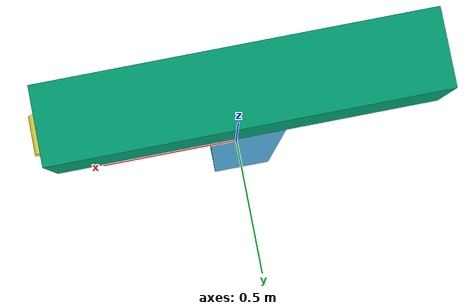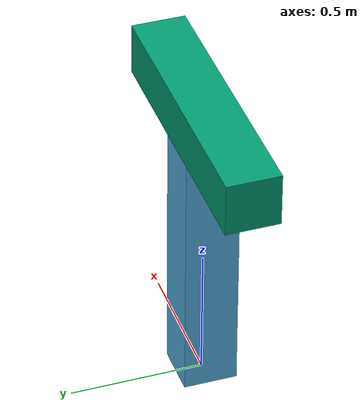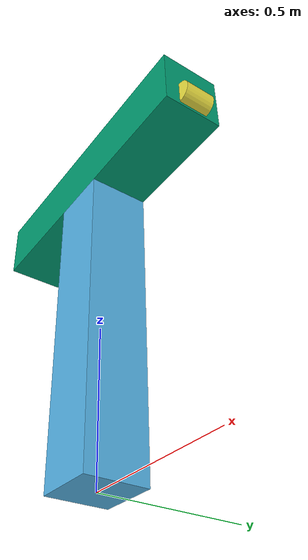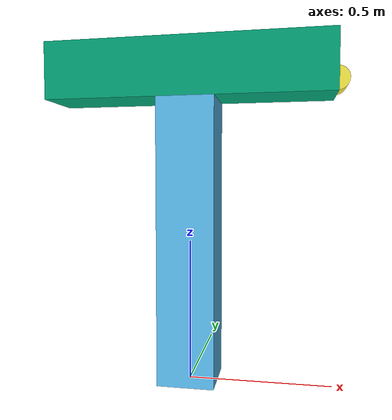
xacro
<?xml version='1.0'?>
<robot name="simple_model" xmlns:xacro="http://ros.org/wiki/xacro">

  <link name="world"/>

  <link name='link_0'>
    <inertial>
      <origin xyz="0 0 0.5" rpy="0 0 0"/>
      <mass value="1"/>
      <inertia
        ixx="0.166667" ixy="0.0" ixz="0.0"
        iyy="0.166667" iyz="0.0"
        izz="0.166667"/>
    </inertial>

    <visual>
      <origin rpy="0 0 0" xyz = "0 0 0.5"/>
      <geometry>
        <box size="0.2 0.2 1"/>
      </geometry>
    </visual>

    <collision>
      <origin xyz="0 0 0.5" rpy="0 0 0"/>
      <geometry>
        <box size="0.2 0.2 1"/>
      </geometry>
    </collision>
  </link>

  <link name='link_1'>
    <inertial>
      <origin xyz="0 0 0.1" rpy="0 0 0"/>
      <mass value="1"/>
      <inertia
        ixx="0.166667" ixy="0.0" ixz="0.0"
        iyy="0.166667" iyz="0.0"
        izz="0.166667"/>
    </inertial>

    <visual>
      <origin rpy="0 0 0" xyz = "0 0 0.1"/>
      <geometry>
        <box size="1 0.2 0.2"/>
      </geometry>
    </visual>

    <collision>
      <origin rpy="0 0 0" xyz = "0 0 0.1"/>
      <geometry>
        <box size="1 0.2 0.2"/>
      </geometry>
    </collision>
  </link>

  <joint name="joint_0" type="fixed">
    <parent link="world"/>
    <child link="link_0"/>
  </joint>

  <joint name="joint_1" type="continuous">
    <axis xyz="0 0 1"/>
    <origin rpy="0 0 0" xyz="0 0 1"/>
    <parent link = "link_0"/>
    <child link="link_1"/>
    <dynamics damping="0.7"/>
  </joint>

<transmission name="tran_1">
    <type>transmission_interface/SimpleTransmission</type>
    <joint name="joint_1">
      <hardwareInterface>hardware_interface/EffortJointInterface</hardwareInterface>
    </joint>
    <actuator name="motor_1">
      <hardwareInterface>hardware_interface/EffortJointInterface</hardwareInterface>
      <mechanicalReduction>1</mechanicalReduction>
    </actuator>
  </transmission>

  <gazebo>
    <plugin name="gazebo_ros_control" filename="libgazebo_ros_control.so">
      <robotNamespace>/simple_model</robotNamespace>
    </plugin>
  </gazebo>

<link name='ray'>
    <inertial>
      <origin xyz="0 0 0" rpy="0 0 0"/>
      <mass value="0.001"/>
      <inertia
        ixx="0.0166667" ixy="0.0" ixz="0.0"
        iyy="0.0166667" iyz="0.0"
        izz="0.0166667"/>
    </inertial>

    <visual>
      <origin xyz = "0 0 0" rpy="0 0 0"/>
      <geometry>
        <cylinder length="0.1" radius = "0.04"/>
      </geometry>
    </visual>

    <collision>
      <geometry>
        <cylinder length="0.1" radius = "0.04"/>
      </geometry>
    </collision>

  </link>

<joint name="link_1_ray" type="fixed">
      <parent link = "link_1"/>
      <child link="ray"/>
      <origin rpy="1.5707 0 0" xyz = "0.5 0 0.05"/>
  </joint>

<gazebo reference="ray">
    <sensor type="ray" name="lidar">
      <pose>0 0 0 0 0 0</pose>
      <visualize>true</visualize>
      <update_rate>30</update_rate>
      <ray>
        <scan>
          <horizontal>
            <samples>32</samples>
            <resolution>1</resolution>
            <min_angle>-0.53529248</min_angle>
            <max_angle>0.18622663</max_angle>
          </horizontal>
        </scan>
        <range>
          <min>0.05</min>
          <max>70</max>
          <resolution>0.02</resolution>
        </range>
      </ray>
      <plugin name = "gazebo_ros_lidar_publisher" filename = "libgazebo_ros_laser.so">
        <topicName>/simple_lidar/scan</topicName>
        <frameName>lidar_link</frameName>
      </plugin>
    </sensor>
  </gazebo>

</robot>
